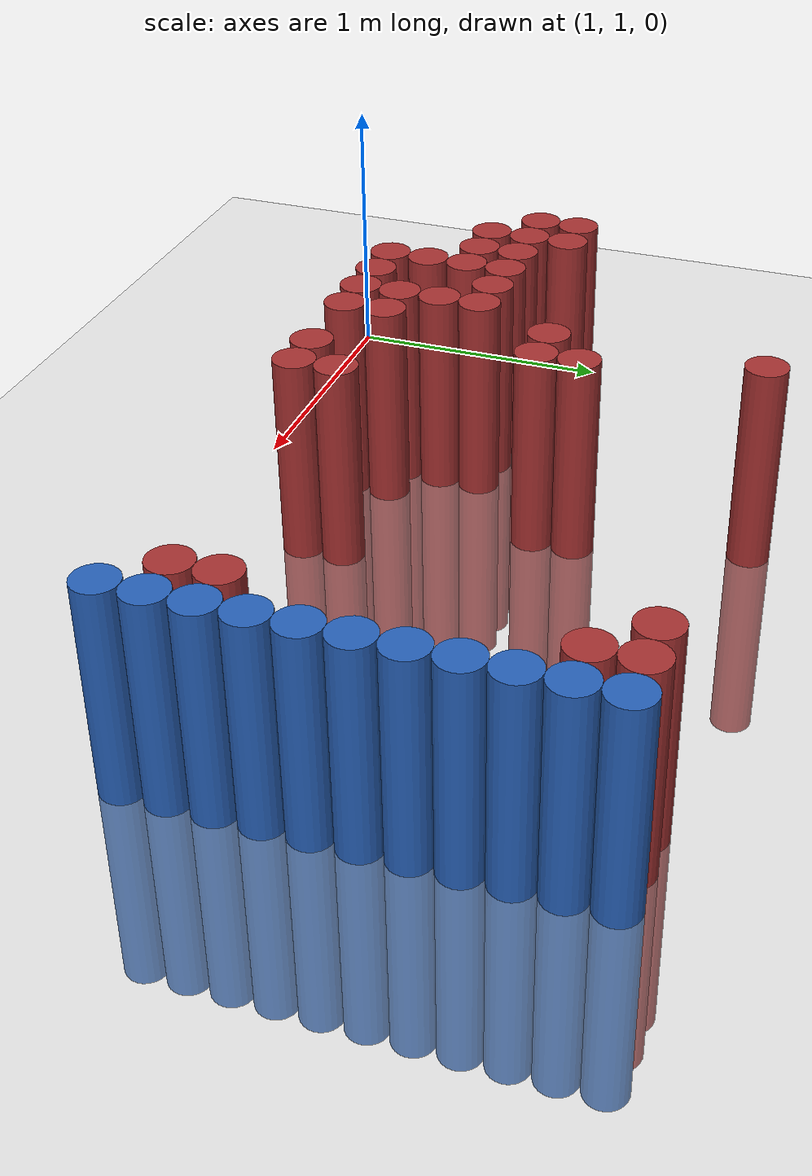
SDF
<sdf version="1.6">
 <world name="default">
  <model name="ground_plane">
   <static>1</static>
   <link name="link">
    <collision name="collision">
     <geometry><plane><normal>0 0 1</normal><size>100 100</size></plane></geometry>
     <surface><friction><ode><mu>100</mu><mu2>50</mu2></ode></friction></surface>
    </collision>
    <visual name="visual">
     <cast_shadows>0</cast_shadows>
     <geometry><plane><normal>0 0 1</normal><size>100 100</size></plane></geometry>
     <material>
      <script><uri>file://media/materials/scripts/gazebo.material</uri><name>Gazebo/Grey</name></script>
     </material>
    </visual>
   </link>
  </model>
  <model name="unit_cylinder_134">
   <static>1</static>
   <pose>3.925000 1.525000 0.000000 0.000000 0.000000 0.000000</pose>
   <link name="link">
    <inertial>
     <mass>1</mass>
     <inertia><ixx>0.145833</ixx><ixy>0</ixy><ixz>0</ixz><iyy>0.145833</iyy><iyz>0</iyz><izz>0.125</izz></inertia>
    </inertial>
    <collision name="collision">
     <geometry><cylinder><radius>0.075000</radius><length>1.5</length></cylinder></geometry>
    </collision>
    <visual name="visual">
     <geometry><cylinder><radius>0.075000</radius><length>1.5</length></cylinder></geometry>
     <material>
      <ambient>0.152000 0.379000 0.720000 1</ambient>
      <diffuse>0.152000 0.379000 0.720000 1</diffuse>
     </material>
     <material>
      <script><name>Gazebo/Grey</name><uri>file://media/materials/scripts/gazebo.material</uri></script>
     </material>
    </visual>
   </link>
  </model>
  <model name="unit_cylinder_136">
   <static>1</static>
   <pose>3.925000 1.675000 0.000000 0.000000 0.000000 0.000000</pose>
   <link name="link">
    <inertial>
     <mass>1</mass>
     <inertia><ixx>0.145833</ixx><ixy>0</ixy><ixz>0</ixz><iyy>0.145833</iyy><iyz>0</iyz><izz>0.125</izz></inertia>
    </inertial>
    <collision name="collision">
     <geometry><cylinder><radius>0.075000</radius><length>1.5</length></cylinder></geometry>
    </collision>
    <visual name="visual">
     <geometry><cylinder><radius>0.075000</radius><length>1.5</length></cylinder></geometry>
     <material>
      <ambient>0.152000 0.379000 0.720000 1</ambient>
      <diffuse>0.152000 0.379000 0.720000 1</diffuse>
     </material>
     <material>
      <script><name>Gazebo/Grey</name><uri>file://media/materials/scripts/gazebo.material</uri></script>
     </material>
    </visual>
   </link>
  </model>
  <model name="unit_cylinder_138">
   <static>1</static>
   <pose>3.925000 1.825000 0.000000 0.000000 0.000000 0.000000</pose>
   <link name="link">
    <inertial>
     <mass>1</mass>
     <inertia><ixx>0.145833</ixx><ixy>0</ixy><ixz>0</ixz><iyy>0.145833</iyy><iyz>0</iyz><izz>0.125</izz></inertia>
    </inertial>
    <collision name="collision">
     <geometry><cylinder><radius>0.075000</radius><length>1.5</length></cylinder></geometry>
    </collision>
    <visual name="visual">
     <geometry><cylinder><radius>0.075000</radius><length>1.5</length></cylinder></geometry>
     <material>
      <ambient>0.152000 0.379000 0.720000 1</ambient>
      <diffuse>0.152000 0.379000 0.720000 1</diffuse>
     </material>
     <material>
      <script><name>Gazebo/Grey</name><uri>file://media/materials/scripts/gazebo.material</uri></script>
     </material>
    </visual>
   </link>
  </model>
  <model name="unit_cylinder_140">
   <static>1</static>
   <pose>3.925000 1.975000 0.000000 0.000000 0.000000 0.000000</pose>
   <link name="link">
    <inertial>
     <mass>1</mass>
     <inertia><ixx>0.145833</ixx><ixy>0</ixy><ixz>0</ixz><iyy>0.145833</iyy><iyz>0</iyz><izz>0.125</izz></inertia>
    </inertial>
    <collision name="collision">
     <geometry><cylinder><radius>0.075000</radius><length>1.5</length></cylinder></geometry>
    </collision>
    <visual name="visual">
     <geometry><cylinder><radius>0.075000</radius><length>1.5</length></cylinder></geometry>
     <material>
      <ambient>0.152000 0.379000 0.720000 1</ambient>
      <diffuse>0.152000 0.379000 0.720000 1</diffuse>
     </material>
     <material>
      <script><name>Gazebo/Grey</name><uri>file://media/materials/scripts/gazebo.material</uri></script>
     </material>
    </visual>
   </link>
  </model>
  <model name="unit_cylinder_142">
   <static>1</static>
   <pose>3.925000 2.125000 0.000000 0.000000 0.000000 0.000000</pose>
   <link name="link">
    <inertial>
     <mass>1</mass>
     <inertia><ixx>0.145833</ixx><ixy>0</ixy><ixz>0</ixz><iyy>0.145833</iyy><iyz>0</iyz><izz>0.125</izz></inertia>
    </inertial>
    <collision name="collision">
     <geometry><cylinder><radius>0.075000</radius><length>1.5</length></cylinder></geometry>
    </collision>
    <visual name="visual">
     <geometry><cylinder><radius>0.075000</radius><length>1.5</length></cylinder></geometry>
     <material>
      <ambient>0.152000 0.379000 0.720000 1</ambient>
      <diffuse>0.152000 0.379000 0.720000 1</diffuse>
     </material>
     <material>
      <script><name>Gazebo/Grey</name><uri>file://media/materials/scripts/gazebo.material</uri></script>
     </material>
    </visual>
   </link>
  </model>
  <model name="unit_cylinder_144">
   <static>1</static>
   <pose>3.925000 2.275000 0.000000 0.000000 0.000000 0.000000</pose>
   <link name="link">
    <inertial>
     <mass>1</mass>
     <inertia><ixx>0.145833</ixx><ixy>0</ixy><ixz>0</ixz><iyy>0.145833</iyy><iyz>0</iyz><izz>0.125</izz></inertia>
    </inertial>
    <collision name="collision">
     <geometry><cylinder><radius>0.075000</radius><length>1.5</length></cylinder></geometry>
    </collision>
    <visual name="visual">
     <geometry><cylinder><radius>0.075000</radius><length>1.5</length></cylinder></geometry>
     <material>
      <ambient>0.152000 0.379000 0.720000 1</ambient>
      <diffuse>0.152000 0.379000 0.720000 1</diffuse>
     </material>
     <material>
      <script><name>Gazebo/Grey</name><uri>file://media/materials/scripts/gazebo.material</uri></script>
     </material>
    </visual>
   </link>
  </model>
  <model name="unit_cylinder_146">
   <static>1</static>
   <pose>3.925000 2.425000 0.000000 0.000000 0.000000 0.000000</pose>
   <link name="link">
    <inertial>
     <mass>1</mass>
     <inertia><ixx>0.145833</ixx><ixy>0</ixy><ixz>0</ixz><iyy>0.145833</iyy><iyz>0</iyz><izz>0.125</izz></inertia>
    </inertial>
    <collision name="collision">
     <geometry><cylinder><radius>0.075000</radius><length>1.5</length></cylinder></geometry>
    </collision>
    <visual name="visual">
     <geometry><cylinder><radius>0.075000</radius><length>1.5</length></cylinder></geometry>
     <material>
      <ambient>0.152000 0.379000 0.720000 1</ambient>
      <diffuse>0.152000 0.379000 0.720000 1</diffuse>
     </material>
     <material>
      <script><name>Gazebo/Grey</name><uri>file://media/materials/scripts/gazebo.material</uri></script>
     </material>
    </visual>
   </link>
  </model>
  <model name="unit_cylinder_148">
   <static>1</static>
   <pose>3.925000 2.575000 0.000000 0.000000 0.000000 0.000000</pose>
   <link name="link">
    <inertial>
     <mass>1</mass>
     <inertia><ixx>0.145833</ixx><ixy>0</ixy><ixz>0</ixz><iyy>0.145833</iyy><iyz>0</iyz><izz>0.125</izz></inertia>
    </inertial>
    <collision name="collision">
     <geometry><cylinder><radius>0.075000</radius><length>1.5</length></cylinder></geometry>
    </collision>
    <visual name="visual">
     <geometry><cylinder><radius>0.075000</radius><length>1.5</length></cylinder></geometry>
     <material>
      <ambient>0.152000 0.379000 0.720000 1</ambient>
      <diffuse>0.152000 0.379000 0.720000 1</diffuse>
     </material>
     <material>
      <script><name>Gazebo/Grey</name><uri>file://media/materials/scripts/gazebo.material</uri></script>
     </material>
    </visual>
   </link>
  </model>
  <model name="unit_cylinder_150">
   <static>1</static>
   <pose>3.925000 2.725000 0.000000 0.000000 0.000000 0.000000</pose>
   <link name="link">
    <inertial>
     <mass>1</mass>
     <inertia><ixx>0.145833</ixx><ixy>0</ixy><ixz>0</ixz><iyy>0.145833</iyy><iyz>0</iyz><izz>0.125</izz></inertia>
    </inertial>
    <collision name="collision">
     <geometry><cylinder><radius>0.075000</radius><length>1.5</length></cylinder></geometry>
    </collision>
    <visual name="visual">
     <geometry><cylinder><radius>0.075000</radius><length>1.5</length></cylinder></geometry>
     <material>
      <ambient>0.152000 0.379000 0.720000 1</ambient>
      <diffuse>0.152000 0.379000 0.720000 1</diffuse>
     </material>
     <material>
      <script><name>Gazebo/Grey</name><uri>file://media/materials/scripts/gazebo.material</uri></script>
     </material>
    </visual>
   </link>
  </model>
  <model name="unit_cylinder_152">
   <static>1</static>
   <pose>3.925000 2.875000 0.000000 0.000000 0.000000 0.000000</pose>
   <link name="link">
    <inertial>
     <mass>1</mass>
     <inertia><ixx>0.145833</ixx><ixy>0</ixy><ixz>0</ixz><iyy>0.145833</iyy><iyz>0</iyz><izz>0.125</izz></inertia>
    </inertial>
    <collision name="collision">
     <geometry><cylinder><radius>0.075000</radius><length>1.5</length></cylinder></geometry>
    </collision>
    <visual name="visual">
     <geometry><cylinder><radius>0.075000</radius><length>1.5</length></cylinder></geometry>
     <material>
      <ambient>0.152000 0.379000 0.720000 1</ambient>
      <diffuse>0.152000 0.379000 0.720000 1</diffuse>
     </material>
     <material>
      <script><name>Gazebo/Grey</name><uri>file://media/materials/scripts/gazebo.material</uri></script>
     </material>
    </visual>
   </link>
  </model>
  <model name="unit_cylinder_357">
   <static>1</static>
   <pose>1.225000 1.825000 0.000000 0.000000 0.000000 0.000000</pose>
   <link name="link">
    <inertial>
     <mass>1</mass>
     <inertia><ixx>0.145833</ixx><ixy>0</ixy><ixz>0</ixz><iyy>0.145833</iyy><iyz>0</iyz><izz>0.125</izz></inertia>
    </inertial>
    <collision name="collision">
     <geometry><cylinder><radius>0.075000</radius><length>1.5</length></cylinder></geometry>
    </collision>
    <visual name="visual">
     <geometry><cylinder><radius>0.075000</radius><length>1.5</length></cylinder></geometry>
     <material>
      <ambient>0.648000 0.192000 0.192000 1</ambient>
      <diffuse>0.648000 0.192000 0.192000 1</diffuse>
     </material>
     <material>
      <script><name>Gazebo/Grey</name><uri>file://media/materials/scripts/gazebo.material</uri></script>
     </material>
    </visual>
   </link>
  </model>
  <model name="unit_cylinder_358">
   <static>1</static>
   <pose>1.225000 1.975000 0.000000 0.000000 0.000000 0.000000</pose>
   <link name="link">
    <inertial>
     <mass>1</mass>
     <inertia><ixx>0.145833</ixx><ixy>0</ixy><ixz>0</ixz><iyy>0.145833</iyy><iyz>0</iyz><izz>0.125</izz></inertia>
    </inertial>
    <collision name="collision">
     <geometry><cylinder><radius>0.075000</radius><length>1.5</length></cylinder></geometry>
    </collision>
    <visual name="visual">
     <geometry><cylinder><radius>0.075000</radius><length>1.5</length></cylinder></geometry>
     <material>
      <ambient>0.648000 0.192000 0.192000 1</ambient>
      <diffuse>0.648000 0.192000 0.192000 1</diffuse>
     </material>
     <material>
      <script><name>Gazebo/Grey</name><uri>file://media/materials/scripts/gazebo.material</uri></script>
     </material>
    </visual>
   </link>
  </model>
  <model name="unit_cylinder_361">
   <static>1</static>
   <pose>1.375000 1.675000 0.000000 0.000000 0.000000 0.000000</pose>
   <link name="link">
    <inertial>
     <mass>1</mass>
     <inertia><ixx>0.145833</ixx><ixy>0</ixy><ixz>0</ixz><iyy>0.145833</iyy><iyz>0</iyz><izz>0.125</izz></inertia>
    </inertial>
    <collision name="collision">
     <geometry><cylinder><radius>0.075000</radius><length>1.5</length></cylinder></geometry>
    </collision>
    <visual name="visual">
     <geometry><cylinder><radius>0.075000</radius><length>1.5</length></cylinder></geometry>
     <material>
      <ambient>0.648000 0.192000 0.192000 1</ambient>
      <diffuse>0.648000 0.192000 0.192000 1</diffuse>
     </material>
     <material>
      <script><name>Gazebo/Grey</name><uri>file://media/materials/scripts/gazebo.material</uri></script>
     </material>
    </visual>
   </link>
  </model>
  <model name="unit_cylinder_362">
   <static>1</static>
   <pose>1.375000 1.825000 0.000000 0.000000 0.000000 0.000000</pose>
   <link name="link">
    <inertial>
     <mass>1</mass>
     <inertia><ixx>0.145833</ixx><ixy>0</ixy><ixz>0</ixz><iyy>0.145833</iyy><iyz>0</iyz><izz>0.125</izz></inertia>
    </inertial>
    <collision name="collision">
     <geometry><cylinder><radius>0.075000</radius><length>1.5</length></cylinder></geometry>
    </collision>
    <visual name="visual">
     <geometry><cylinder><radius>0.075000</radius><length>1.5</length></cylinder></geometry>
     <material>
      <ambient>0.648000 0.192000 0.192000 1</ambient>
      <diffuse>0.648000 0.192000 0.192000 1</diffuse>
     </material>
     <material>
      <script><name>Gazebo/Grey</name><uri>file://media/materials/scripts/gazebo.material</uri></script>
     </material>
    </visual>
   </link>
  </model>
  <model name="unit_cylinder_363">
   <static>1</static>
   <pose>1.375000 1.975000 0.000000 0.000000 0.000000 0.000000</pose>
   <link name="link">
    <inertial>
     <mass>1</mass>
     <inertia><ixx>0.145833</ixx><ixy>0</ixy><ixz>0</ixz><iyy>0.145833</iyy><iyz>0</iyz><izz>0.125</izz></inertia>
    </inertial>
    <collision name="collision">
     <geometry><cylinder><radius>0.075000</radius><length>1.5</length></cylinder></geometry>
    </collision>
    <visual name="visual">
     <geometry><cylinder><radius>0.075000</radius><length>1.5</length></cylinder></geometry>
     <material>
      <ambient>0.648000 0.192000 0.192000 1</ambient>
      <diffuse>0.648000 0.192000 0.192000 1</diffuse>
     </material>
     <material>
      <script><name>Gazebo/Grey</name><uri>file://media/materials/scripts/gazebo.material</uri></script>
     </material>
    </visual>
   </link>
  </model>
  <model name="unit_cylinder_366">
   <static>1</static>
   <pose>1.525000 1.675000 0.000000 0.000000 0.000000 0.000000</pose>
   <link name="link">
    <inertial>
     <mass>1</mass>
     <inertia><ixx>0.145833</ixx><ixy>0</ixy><ixz>0</ixz><iyy>0.145833</iyy><iyz>0</iyz><izz>0.125</izz></inertia>
    </inertial>
    <collision name="collision">
     <geometry><cylinder><radius>0.075000</radius><length>1.5</length></cylinder></geometry>
    </collision>
    <visual name="visual">
     <geometry><cylinder><radius>0.075000</radius><length>1.5</length></cylinder></geometry>
     <material>
      <ambient>0.648000 0.192000 0.192000 1</ambient>
      <diffuse>0.648000 0.192000 0.192000 1</diffuse>
     </material>
     <material>
      <script><name>Gazebo/Grey</name><uri>file://media/materials/scripts/gazebo.material</uri></script>
     </material>
    </visual>
   </link>
  </model>
  <model name="unit_cylinder_367">
   <static>1</static>
   <pose>1.525000 1.825000 0.000000 0.000000 0.000000 0.000000</pose>
   <link name="link">
    <inertial>
     <mass>1</mass>
     <inertia><ixx>0.145833</ixx><ixy>0</ixy><ixz>0</ixz><iyy>0.145833</iyy><iyz>0</iyz><izz>0.125</izz></inertia>
    </inertial>
    <collision name="collision">
     <geometry><cylinder><radius>0.075000</radius><length>1.5</length></cylinder></geometry>
    </collision>
    <visual name="visual">
     <geometry><cylinder><radius>0.075000</radius><length>1.5</length></cylinder></geometry>
     <material>
      <ambient>0.648000 0.192000 0.192000 1</ambient>
      <diffuse>0.648000 0.192000 0.192000 1</diffuse>
     </material>
     <material>
      <script><name>Gazebo/Grey</name><uri>file://media/materials/scripts/gazebo.material</uri></script>
     </material>
    </visual>
   </link>
  </model>
  <model name="unit_cylinder_373">
   <static>1</static>
   <pose>1.675000 1.375000 0.000000 0.000000 0.000000 0.000000</pose>
   <link name="link">
    <inertial>
     <mass>1</mass>
     <inertia><ixx>0.145833</ixx><ixy>0</ixy><ixz>0</ixz><iyy>0.145833</iyy><iyz>0</iyz><izz>0.125</izz></inertia>
    </inertial>
    <collision name="collision">
     <geometry><cylinder><radius>0.075000</radius><length>1.5</length></cylinder></geometry>
    </collision>
    <visual name="visual">
     <geometry><cylinder><radius>0.075000</radius><length>1.5</length></cylinder></geometry>
     <material>
      <ambient>0.648000 0.192000 0.192000 1</ambient>
      <diffuse>0.648000 0.192000 0.192000 1</diffuse>
     </material>
     <material>
      <script><name>Gazebo/Grey</name><uri>file://media/materials/scripts/gazebo.material</uri></script>
     </material>
    </visual>
   </link>
  </model>
  <model name="unit_cylinder_374">
   <static>1</static>
   <pose>1.675000 1.525000 0.000000 0.000000 0.000000 0.000000</pose>
   <link name="link">
    <inertial>
     <mass>1</mass>
     <inertia><ixx>0.145833</ixx><ixy>0</ixy><ixz>0</ixz><iyy>0.145833</iyy><iyz>0</iyz><izz>0.125</izz></inertia>
    </inertial>
    <collision name="collision">
     <geometry><cylinder><radius>0.075000</radius><length>1.5</length></cylinder></geometry>
    </collision>
    <visual name="visual">
     <geometry><cylinder><radius>0.075000</radius><length>1.5</length></cylinder></geometry>
     <material>
      <ambient>0.648000 0.192000 0.192000 1</ambient>
      <diffuse>0.648000 0.192000 0.192000 1</diffuse>
     </material>
     <material>
      <script><name>Gazebo/Grey</name><uri>file://media/materials/scripts/gazebo.material</uri></script>
     </material>
    </visual>
   </link>
  </model>
  <model name="unit_cylinder_375">
   <static>1</static>
   <pose>1.675000 1.675000 0.000000 0.000000 0.000000 0.000000</pose>
   <link name="link">
    <inertial>
     <mass>1</mass>
     <inertia><ixx>0.145833</ixx><ixy>0</ixy><ixz>0</ixz><iyy>0.145833</iyy><iyz>0</iyz><izz>0.125</izz></inertia>
    </inertial>
    <collision name="collision">
     <geometry><cylinder><radius>0.075000</radius><length>1.5</length></cylinder></geometry>
    </collision>
    <visual name="visual">
     <geometry><cylinder><radius>0.075000</radius><length>1.5</length></cylinder></geometry>
     <material>
      <ambient>0.648000 0.192000 0.192000 1</ambient>
      <diffuse>0.648000 0.192000 0.192000 1</diffuse>
     </material>
     <material>
      <script><name>Gazebo/Grey</name><uri>file://media/materials/scripts/gazebo.material</uri></script>
     </material>
    </visual>
   </link>
  </model>
  <model name="unit_cylinder_376">
   <static>1</static>
   <pose>1.675000 1.825000 0.000000 0.000000 0.000000 0.000000</pose>
   <link name="link">
    <inertial>
     <mass>1</mass>
     <inertia><ixx>0.145833</ixx><ixy>0</ixy><ixz>0</ixz><iyy>0.145833</iyy><iyz>0</iyz><izz>0.125</izz></inertia>
    </inertial>
    <collision name="collision">
     <geometry><cylinder><radius>0.075000</radius><length>1.5</length></cylinder></geometry>
    </collision>
    <visual name="visual">
     <geometry><cylinder><radius>0.075000</radius><length>1.5</length></cylinder></geometry>
     <material>
      <ambient>0.648000 0.192000 0.192000 1</ambient>
      <diffuse>0.648000 0.192000 0.192000 1</diffuse>
     </material>
     <material>
      <script><name>Gazebo/Grey</name><uri>file://media/materials/scripts/gazebo.material</uri></script>
     </material>
    </visual>
   </link>
  </model>
  <model name="unit_cylinder_384">
   <static>1</static>
   <pose>1.825000 1.375000 0.000000 0.000000 0.000000 0.000000</pose>
   <link name="link">
    <inertial>
     <mass>1</mass>
     <inertia><ixx>0.145833</ixx><ixy>0</ixy><ixz>0</ixz><iyy>0.145833</iyy><iyz>0</iyz><izz>0.125</izz></inertia>
    </inertial>
    <collision name="collision">
     <geometry><cylinder><radius>0.075000</radius><length>1.5</length></cylinder></geometry>
    </collision>
    <visual name="visual">
     <geometry><cylinder><radius>0.075000</radius><length>1.5</length></cylinder></geometry>
     <material>
      <ambient>0.648000 0.192000 0.192000 1</ambient>
      <diffuse>0.648000 0.192000 0.192000 1</diffuse>
     </material>
     <material>
      <script><name>Gazebo/Grey</name><uri>file://media/materials/scripts/gazebo.material</uri></script>
     </material>
    </visual>
   </link>
  </model>
  <model name="unit_cylinder_385">
   <static>1</static>
   <pose>1.825000 1.825000 0.000000 0.000000 0.000000 0.000000</pose>
   <link name="link">
    <inertial>
     <mass>1</mass>
     <inertia><ixx>0.145833</ixx><ixy>0</ixy><ixz>0</ixz><iyy>0.145833</iyy><iyz>0</iyz><izz>0.125</izz></inertia>
    </inertial>
    <collision name="collision">
     <geometry><cylinder><radius>0.075000</radius><length>1.5</length></cylinder></geometry>
    </collision>
    <visual name="visual">
     <geometry><cylinder><radius>0.075000</radius><length>1.5</length></cylinder></geometry>
     <material>
      <ambient>0.648000 0.192000 0.192000 1</ambient>
      <diffuse>0.648000 0.192000 0.192000 1</diffuse>
     </material>
     <material>
      <script><name>Gazebo/Grey</name><uri>file://media/materials/scripts/gazebo.material</uri></script>
     </material>
    </visual>
   </link>
  </model>
  <model name="unit_cylinder_395">
   <static>1</static>
   <pose>1.975000 1.375000 0.000000 0.000000 0.000000 0.000000</pose>
   <link name="link">
    <inertial>
     <mass>1</mass>
     <inertia><ixx>0.145833</ixx><ixy>0</ixy><ixz>0</ixz><iyy>0.145833</iyy><iyz>0</iyz><izz>0.125</izz></inertia>
    </inertial>
    <collision name="collision">
     <geometry><cylinder><radius>0.075000</radius><length>1.5</length></cylinder></geometry>
    </collision>
    <visual name="visual">
     <geometry><cylinder><radius>0.075000</radius><length>1.5</length></cylinder></geometry>
     <material>
      <ambient>0.648000 0.192000 0.192000 1</ambient>
      <diffuse>0.648000 0.192000 0.192000 1</diffuse>
     </material>
     <material>
      <script><name>Gazebo/Grey</name><uri>file://media/materials/scripts/gazebo.material</uri></script>
     </material>
    </visual>
   </link>
  </model>
  <model name="unit_cylinder_396">
   <static>1</static>
   <pose>1.975000 1.525000 0.000000 0.000000 0.000000 0.000000</pose>
   <link name="link">
    <inertial>
     <mass>1</mass>
     <inertia><ixx>0.145833</ixx><ixy>0</ixy><ixz>0</ixz><iyy>0.145833</iyy><iyz>0</iyz><izz>0.125</izz></inertia>
    </inertial>
    <collision name="collision">
     <geometry><cylinder><radius>0.075000</radius><length>1.5</length></cylinder></geometry>
    </collision>
    <visual name="visual">
     <geometry><cylinder><radius>0.075000</radius><length>1.5</length></cylinder></geometry>
     <material>
      <ambient>0.648000 0.192000 0.192000 1</ambient>
      <diffuse>0.648000 0.192000 0.192000 1</diffuse>
     </material>
     <material>
      <script><name>Gazebo/Grey</name><uri>file://media/materials/scripts/gazebo.material</uri></script>
     </material>
    </visual>
   </link>
  </model>
  <model name="unit_cylinder_397">
   <static>1</static>
   <pose>1.975000 1.675000 0.000000 0.000000 0.000000 0.000000</pose>
   <link name="link">
    <inertial>
     <mass>1</mass>
     <inertia><ixx>0.145833</ixx><ixy>0</ixy><ixz>0</ixz><iyy>0.145833</iyy><iyz>0</iyz><izz>0.125</izz></inertia>
    </inertial>
    <collision name="collision">
     <geometry><cylinder><radius>0.075000</radius><length>1.5</length></cylinder></geometry>
    </collision>
    <visual name="visual">
     <geometry><cylinder><radius>0.075000</radius><length>1.5</length></cylinder></geometry>
     <material>
      <ambient>0.648000 0.192000 0.192000 1</ambient>
      <diffuse>0.648000 0.192000 0.192000 1</diffuse>
     </material>
     <material>
      <script><name>Gazebo/Grey</name><uri>file://media/materials/scripts/gazebo.material</uri></script>
     </material>
    </visual>
   </link>
  </model>
  <model name="unit_cylinder_398">
   <static>1</static>
   <pose>1.975000 1.825000 0.000000 0.000000 0.000000 0.000000</pose>
   <link name="link">
    <inertial>
     <mass>1</mass>
     <inertia><ixx>0.145833</ixx><ixy>0</ixy><ixz>0</ixz><iyy>0.145833</iyy><iyz>0</iyz><izz>0.125</izz></inertia>
    </inertial>
    <collision name="collision">
     <geometry><cylinder><radius>0.075000</radius><length>1.5</length></cylinder></geometry>
    </collision>
    <visual name="visual">
     <geometry><cylinder><radius>0.075000</radius><length>1.5</length></cylinder></geometry>
     <material>
      <ambient>0.648000 0.192000 0.192000 1</ambient>
      <diffuse>0.648000 0.192000 0.192000 1</diffuse>
     </material>
     <material>
      <script><name>Gazebo/Grey</name><uri>file://media/materials/scripts/gazebo.material</uri></script>
     </material>
    </visual>
   </link>
  </model>
  <model name="unit_cylinder_406">
   <static>1</static>
   <pose>2.125000 1.375000 0.000000 0.000000 0.000000 0.000000</pose>
   <link name="link">
    <inertial>
     <mass>1</mass>
     <inertia><ixx>0.145833</ixx><ixy>0</ixy><ixz>0</ixz><iyy>0.145833</iyy><iyz>0</iyz><izz>0.125</izz></inertia>
    </inertial>
    <collision name="collision">
     <geometry><cylinder><radius>0.075000</radius><length>1.5</length></cylinder></geometry>
    </collision>
    <visual name="visual">
     <geometry><cylinder><radius>0.075000</radius><length>1.5</length></cylinder></geometry>
     <material>
      <ambient>0.648000 0.192000 0.192000 1</ambient>
      <diffuse>0.648000 0.192000 0.192000 1</diffuse>
     </material>
     <material>
      <script><name>Gazebo/Grey</name><uri>file://media/materials/scripts/gazebo.material</uri></script>
     </material>
    </visual>
   </link>
  </model>
  <model name="unit_cylinder_407">
   <static>1</static>
   <pose>2.125000 1.525000 0.000000 0.000000 0.000000 0.000000</pose>
   <link name="link">
    <inertial>
     <mass>1</mass>
     <inertia><ixx>0.145833</ixx><ixy>0</ixy><ixz>0</ixz><iyy>0.145833</iyy><iyz>0</iyz><izz>0.125</izz></inertia>
    </inertial>
    <collision name="collision">
     <geometry><cylinder><radius>0.075000</radius><length>1.5</length></cylinder></geometry>
    </collision>
    <visual name="visual">
     <geometry><cylinder><radius>0.075000</radius><length>1.5</length></cylinder></geometry>
     <material>
      <ambient>0.648000 0.192000 0.192000 1</ambient>
      <diffuse>0.648000 0.192000 0.192000 1</diffuse>
     </material>
     <material>
      <script><name>Gazebo/Grey</name><uri>file://media/materials/scripts/gazebo.material</uri></script>
     </material>
    </visual>
   </link>
  </model>
  <model name="unit_cylinder_408">
   <static>1</static>
   <pose>2.125000 2.125000 0.000000 0.000000 0.000000 0.000000</pose>
   <link name="link">
    <inertial>
     <mass>1</mass>
     <inertia><ixx>0.145833</ixx><ixy>0</ixy><ixz>0</ixz><iyy>0.145833</iyy><iyz>0</iyz><izz>0.125</izz></inertia>
    </inertial>
    <collision name="collision">
     <geometry><cylinder><radius>0.075000</radius><length>1.5</length></cylinder></geometry>
    </collision>
    <visual name="visual">
     <geometry><cylinder><radius>0.075000</radius><length>1.5</length></cylinder></geometry>
     <material>
      <ambient>0.648000 0.192000 0.192000 1</ambient>
      <diffuse>0.648000 0.192000 0.192000 1</diffuse>
     </material>
     <material>
      <script><name>Gazebo/Grey</name><uri>file://media/materials/scripts/gazebo.material</uri></script>
     </material>
    </visual>
   </link>
  </model>
  <model name="unit_cylinder_409">
   <static>1</static>
   <pose>2.125000 2.875000 0.000000 0.000000 0.000000 0.000000</pose>
   <link name="link">
    <inertial>
     <mass>1</mass>
     <inertia><ixx>0.145833</ixx><ixy>0</ixy><ixz>0</ixz><iyy>0.145833</iyy><iyz>0</iyz><izz>0.125</izz></inertia>
    </inertial>
    <collision name="collision">
     <geometry><cylinder><radius>0.075000</radius><length>1.5</length></cylinder></geometry>
    </collision>
    <visual name="visual">
     <geometry><cylinder><radius>0.075000</radius><length>1.5</length></cylinder></geometry>
     <material>
      <ambient>0.648000 0.192000 0.192000 1</ambient>
      <diffuse>0.648000 0.192000 0.192000 1</diffuse>
     </material>
     <material>
      <script><name>Gazebo/Grey</name><uri>file://media/materials/scripts/gazebo.material</uri></script>
     </material>
    </visual>
   </link>
  </model>
  <model name="unit_cylinder_416">
   <static>1</static>
   <pose>2.275000 2.125000 0.000000 0.000000 0.000000 0.000000</pose>
   <link name="link">
    <inertial>
     <mass>1</mass>
     <inertia><ixx>0.145833</ixx><ixy>0</ixy><ixz>0</ixz><iyy>0.145833</iyy><iyz>0</iyz><izz>0.125</izz></inertia>
    </inertial>
    <collision name="collision">
     <geometry><cylinder><radius>0.075000</radius><length>1.5</length></cylinder></geometry>
    </collision>
    <visual name="visual">
     <geometry><cylinder><radius>0.075000</radius><length>1.5</length></cylinder></geometry>
     <material>
      <ambient>0.648000 0.192000 0.192000 1</ambient>
      <diffuse>0.648000 0.192000 0.192000 1</diffuse>
     </material>
     <material>
      <script><name>Gazebo/Grey</name><uri>file://media/materials/scripts/gazebo.material</uri></script>
     </material>
    </visual>
   </link>
  </model>
  <model name="unit_cylinder_417">
   <static>1</static>
   <pose>2.275000 2.275000 0.000000 0.000000 0.000000 0.000000</pose>
   <link name="link">
    <inertial>
     <mass>1</mass>
     <inertia><ixx>0.145833</ixx><ixy>0</ixy><ixz>0</ixz><iyy>0.145833</iyy><iyz>0</iyz><izz>0.125</izz></inertia>
    </inertial>
    <collision name="collision">
     <geometry><cylinder><radius>0.075000</radius><length>1.5</length></cylinder></geometry>
    </collision>
    <visual name="visual">
     <geometry><cylinder><radius>0.075000</radius><length>1.5</length></cylinder></geometry>
     <material>
      <ambient>0.648000 0.192000 0.192000 1</ambient>
      <diffuse>0.648000 0.192000 0.192000 1</diffuse>
     </material>
     <material>
      <script><name>Gazebo/Grey</name><uri>file://media/materials/scripts/gazebo.material</uri></script>
     </material>
    </visual>
   </link>
  </model>
  <model name="unit_cylinder_421">
   <static>1</static>
   <pose>2.425000 1.375000 0.000000 0.000000 0.000000 0.000000</pose>
   <link name="link">
    <inertial>
     <mass>1</mass>
     <inertia><ixx>0.145833</ixx><ixy>0</ixy><ixz>0</ixz><iyy>0.145833</iyy><iyz>0</iyz><izz>0.125</izz></inertia>
    </inertial>
    <collision name="collision">
     <geometry><cylinder><radius>0.075000</radius><length>1.5</length></cylinder></geometry>
    </collision>
    <visual name="visual">
     <geometry><cylinder><radius>0.075000</radius><length>1.5</length></cylinder></geometry>
     <material>
      <ambient>0.648000 0.192000 0.192000 1</ambient>
      <diffuse>0.648000 0.192000 0.192000 1</diffuse>
     </material>
     <material>
      <script><name>Gazebo/Grey</name><uri>file://media/materials/scripts/gazebo.material</uri></script>
     </material>
    </visual>
   </link>
  </model>
  <model name="unit_cylinder_423">
   <static>1</static>
   <pose>2.575000 1.375000 0.000000 0.000000 0.000000 0.000000</pose>
   <link name="link">
    <inertial>
     <mass>1</mass>
     <inertia><ixx>0.145833</ixx><ixy>0</ixy><ixz>0</ixz><iyy>0.145833</iyy><iyz>0</iyz><izz>0.125</izz></inertia>
    </inertial>
    <collision name="collision">
     <geometry><cylinder><radius>0.075000</radius><length>1.5</length></cylinder></geometry>
    </collision>
    <visual name="visual">
     <geometry><cylinder><radius>0.075000</radius><length>1.5</length></cylinder></geometry>
     <material>
      <ambient>0.648000 0.192000 0.192000 1</ambient>
      <diffuse>0.648000 0.192000 0.192000 1</diffuse>
     </material>
     <material>
      <script><name>Gazebo/Grey</name><uri>file://media/materials/scripts/gazebo.material</uri></script>
     </material>
    </visual>
   </link>
  </model>
  <model name="unit_cylinder_424">
   <static>1</static>
   <pose>2.575000 1.525000 0.000000 0.000000 0.000000 0.000000</pose>
   <link name="link">
    <inertial>
     <mass>1</mass>
     <inertia><ixx>0.145833</ixx><ixy>0</ixy><ixz>0</ixz><iyy>0.145833</iyy><iyz>0</iyz><izz>0.125</izz></inertia>
    </inertial>
    <collision name="collision">
     <geometry><cylinder><radius>0.075000</radius><length>1.5</length></cylinder></geometry>
    </collision>
    <visual name="visual">
     <geometry><cylinder><radius>0.075000</radius><length>1.5</length></cylinder></geometry>
     <material>
      <ambient>0.648000 0.192000 0.192000 1</ambient>
      <diffuse>0.648000 0.192000 0.192000 1</diffuse>
     </material>
     <material>
      <script><name>Gazebo/Grey</name><uri>file://media/materials/scripts/gazebo.material</uri></script>
     </material>
    </visual>
   </link>
  </model>
  <model name="unit_cylinder_454">
   <static>1</static>
   <pose>3.625000 2.875000 0.000000 0.000000 0.000000 0.000000</pose>
   <link name="link">
    <inertial>
     <mass>1</mass>
     <inertia><ixx>0.145833</ixx><ixy>0</ixy><ixz>0</ixz><iyy>0.145833</iyy><iyz>0</iyz><izz>0.125</izz></inertia>
    </inertial>
    <collision name="collision">
     <geometry><cylinder><radius>0.075000</radius><length>1.5</length></cylinder></geometry>
    </collision>
    <visual name="visual">
     <geometry><cylinder><radius>0.075000</radius><length>1.5</length></cylinder></geometry>
     <material>
      <ambient>0.648000 0.192000 0.192000 1</ambient>
      <diffuse>0.648000 0.192000 0.192000 1</diffuse>
     </material>
     <material>
      <script><name>Gazebo/Grey</name><uri>file://media/materials/scripts/gazebo.material</uri></script>
     </material>
    </visual>
   </link>
  </model>
  <model name="unit_cylinder_463">
   <static>1</static>
   <pose>3.775000 1.525000 0.000000 0.000000 0.000000 0.000000</pose>
   <link name="link">
    <inertial>
     <mass>1</mass>
     <inertia><ixx>0.145833</ixx><ixy>0</ixy><ixz>0</ixz><iyy>0.145833</iyy><iyz>0</iyz><izz>0.125</izz></inertia>
    </inertial>
    <collision name="collision">
     <geometry><cylinder><radius>0.075000</radius><length>1.5</length></cylinder></geometry>
    </collision>
    <visual name="visual">
     <geometry><cylinder><radius>0.075000</radius><length>1.5</length></cylinder></geometry>
     <material>
      <ambient>0.648000 0.192000 0.192000 1</ambient>
      <diffuse>0.648000 0.192000 0.192000 1</diffuse>
     </material>
     <material>
      <script><name>Gazebo/Grey</name><uri>file://media/materials/scripts/gazebo.material</uri></script>
     </material>
    </visual>
   </link>
  </model>
  <model name="unit_cylinder_464">
   <static>1</static>
   <pose>3.775000 1.675000 0.000000 0.000000 0.000000 0.000000</pose>
   <link name="link">
    <inertial>
     <mass>1</mass>
     <inertia><ixx>0.145833</ixx><ixy>0</ixy><ixz>0</ixz><iyy>0.145833</iyy><iyz>0</iyz><izz>0.125</izz></inertia>
    </inertial>
    <collision name="collision">
     <geometry><cylinder><radius>0.075000</radius><length>1.5</length></cylinder></geometry>
    </collision>
    <visual name="visual">
     <geometry><cylinder><radius>0.075000</radius><length>1.5</length></cylinder></geometry>
     <material>
      <ambient>0.648000 0.192000 0.192000 1</ambient>
      <diffuse>0.648000 0.192000 0.192000 1</diffuse>
     </material>
     <material>
      <script><name>Gazebo/Grey</name><uri>file://media/materials/scripts/gazebo.material</uri></script>
     </material>
    </visual>
   </link>
  </model>
  <model name="unit_cylinder_465">
   <static>1</static>
   <pose>3.775000 2.725000 0.000000 0.000000 0.000000 0.000000</pose>
   <link name="link">
    <inertial>
     <mass>1</mass>
     <inertia><ixx>0.145833</ixx><ixy>0</ixy><ixz>0</ixz><iyy>0.145833</iyy><iyz>0</iyz><izz>0.125</izz></inertia>
    </inertial>
    <collision name="collision">
     <geometry><cylinder><radius>0.075000</radius><length>1.5</length></cylinder></geometry>
    </collision>
    <visual name="visual">
     <geometry><cylinder><radius>0.075000</radius><length>1.5</length></cylinder></geometry>
     <material>
      <ambient>0.648000 0.192000 0.192000 1</ambient>
      <diffuse>0.648000 0.192000 0.192000 1</diffuse>
     </material>
     <material>
      <script><name>Gazebo/Grey</name><uri>file://media/materials/scripts/gazebo.material</uri></script>
     </material>
    </visual>
   </link>
  </model>
  <model name="unit_cylinder_466">
   <static>1</static>
   <pose>3.775000 2.875000 0.000000 0.000000 0.000000 0.000000</pose>
   <link name="link">
    <inertial>
     <mass>1</mass>
     <inertia><ixx>0.145833</ixx><ixy>0</ixy><ixz>0</ixz><iyy>0.145833</iyy><iyz>0</iyz><izz>0.125</izz></inertia>
    </inertial>
    <collision name="collision">
     <geometry><cylinder><radius>0.075000</radius><length>1.5</length></cylinder></geometry>
    </collision>
    <visual name="visual">
     <geometry><cylinder><radius>0.075000</radius><length>1.5</length></cylinder></geometry>
     <material>
      <ambient>0.648000 0.192000 0.192000 1</ambient>
      <diffuse>0.648000 0.192000 0.192000 1</diffuse>
     </material>
     <material>
      <script><name>Gazebo/Grey</name><uri>file://media/materials/scripts/gazebo.material</uri></script>
     </material>
    </visual>
   </link>
  </model>
  <model name="unit_cylinder_492">
   <static>1</static>
   <pose>3.925000 1.375000 0.000000 0.000000 0.000000 0.000000</pose>
   <link name="link">
    <inertial>
     <mass>1</mass>
     <inertia><ixx>0.145833</ixx><ixy>0</ixy><ixz>0</ixz><iyy>0.145833</iyy><iyz>0</iyz><izz>0.125</izz></inertia>
    </inertial>
    <collision name="collision">
     <geometry><cylinder><radius>0.075000</radius><length>1.5</length></cylinder></geometry>
    </collision>
    <visual name="visual">
     <geometry><cylinder><radius>0.075000</radius><length>1.5</length></cylinder></geometry>
     <material>
      <ambient>0.152000 0.379000 0.720000 1</ambient>
      <diffuse>0.152000 0.379000 0.720000 1</diffuse>
     </material>
     <material>
      <script><name>Gazebo/Grey</name><uri>file://media/materials/scripts/gazebo.material</uri></script>
     </material>
    </visual>
   </link>
  </model>
  <model name="unit_cylinder_493">
   <static>1</static>
   <pose>3.925000 1.525000 0.000000 0.000000 0.000000 0.000000</pose>
   <link name="link">
    <inertial>
     <mass>1</mass>
     <inertia><ixx>0.145833</ixx><ixy>0</ixy><ixz>0</ixz><iyy>0.145833</iyy><iyz>0</iyz><izz>0.125</izz></inertia>
    </inertial>
    <collision name="collision">
     <geometry><cylinder><radius>0.075000</radius><length>1.5</length></cylinder></geometry>
    </collision>
    <visual name="visual">
     <geometry><cylinder><radius>0.075000</radius><length>1.5</length></cylinder></geometry>
     <material>
      <ambient>0.152000 0.379000 0.720000 1</ambient>
      <diffuse>0.152000 0.379000 0.720000 1</diffuse>
     </material>
     <material>
      <script><name>Gazebo/Grey</name><uri>file://media/materials/scripts/gazebo.material</uri></script>
     </material>
    </visual>
   </link>
  </model>
  <model name="unit_cylinder_494">
   <static>1</static>
   <pose>3.925000 1.675000 0.000000 0.000000 0.000000 0.000000</pose>
   <link name="link">
    <inertial>
     <mass>1</mass>
     <inertia><ixx>0.145833</ixx><ixy>0</ixy><ixz>0</ixz><iyy>0.145833</iyy><iyz>0</iyz><izz>0.125</izz></inertia>
    </inertial>
    <collision name="collision">
     <geometry><cylinder><radius>0.075000</radius><length>1.5</length></cylinder></geometry>
    </collision>
    <visual name="visual">
     <geometry><cylinder><radius>0.075000</radius><length>1.5</length></cylinder></geometry>
     <material>
      <ambient>0.152000 0.379000 0.720000 1</ambient>
      <diffuse>0.152000 0.379000 0.720000 1</diffuse>
     </material>
     <material>
      <script><name>Gazebo/Grey</name><uri>file://media/materials/scripts/gazebo.material</uri></script>
     </material>
    </visual>
   </link>
  </model>
  <model name="unit_cylinder_495">
   <static>1</static>
   <pose>3.925000 1.825000 0.000000 0.000000 0.000000 0.000000</pose>
   <link name="link">
    <inertial>
     <mass>1</mass>
     <inertia><ixx>0.145833</ixx><ixy>0</ixy><ixz>0</ixz><iyy>0.145833</iyy><iyz>0</iyz><izz>0.125</izz></inertia>
    </inertial>
    <collision name="collision">
     <geometry><cylinder><radius>0.075000</radius><length>1.5</length></cylinder></geometry>
    </collision>
    <visual name="visual">
     <geometry><cylinder><radius>0.075000</radius><length>1.5</length></cylinder></geometry>
     <material>
      <ambient>0.152000 0.379000 0.720000 1</ambient>
      <diffuse>0.152000 0.379000 0.720000 1</diffuse>
     </material>
     <material>
      <script><name>Gazebo/Grey</name><uri>file://media/materials/scripts/gazebo.material</uri></script>
     </material>
    </visual>
   </link>
  </model>
  <model name="unit_cylinder_496">
   <static>1</static>
   <pose>3.925000 1.975000 0.000000 0.000000 0.000000 0.000000</pose>
   <link name="link">
    <inertial>
     <mass>1</mass>
     <inertia><ixx>0.145833</ixx><ixy>0</ixy><ixz>0</ixz><iyy>0.145833</iyy><iyz>0</iyz><izz>0.125</izz></inertia>
    </inertial>
    <collision name="collision">
     <geometry><cylinder><radius>0.075000</radius><length>1.5</length></cylinder></geometry>
    </collision>
    <visual name="visual">
     <geometry><cylinder><radius>0.075000</radius><length>1.5</length></cylinder></geometry>
     <material>
      <ambient>0.152000 0.379000 0.720000 1</ambient>
      <diffuse>0.152000 0.379000 0.720000 1</diffuse>
     </material>
     <material>
      <script><name>Gazebo/Grey</name><uri>file://media/materials/scripts/gazebo.material</uri></script>
     </material>
    </visual>
   </link>
  </model>
  <model name="unit_cylinder_497">
   <static>1</static>
   <pose>3.925000 2.125000 0.000000 0.000000 0.000000 0.000000</pose>
   <link name="link">
    <inertial>
     <mass>1</mass>
     <inertia><ixx>0.145833</ixx><ixy>0</ixy><ixz>0</ixz><iyy>0.145833</iyy><iyz>0</iyz><izz>0.125</izz></inertia>
    </inertial>
    <collision name="collision">
     <geometry><cylinder><radius>0.075000</radius><length>1.5</length></cylinder></geometry>
    </collision>
    <visual name="visual">
     <geometry><cylinder><radius>0.075000</radius><length>1.5</length></cylinder></geometry>
     <material>
      <ambient>0.152000 0.379000 0.720000 1</ambient>
      <diffuse>0.152000 0.379000 0.720000 1</diffuse>
     </material>
     <material>
      <script><name>Gazebo/Grey</name><uri>file://media/materials/scripts/gazebo.material</uri></script>
     </material>
    </visual>
   </link>
  </model>
  <model name="unit_cylinder_498">
   <static>1</static>
   <pose>3.925000 2.275000 0.000000 0.000000 0.000000 0.000000</pose>
   <link name="link">
    <inertial>
     <mass>1</mass>
     <inertia><ixx>0.145833</ixx><ixy>0</ixy><ixz>0</ixz><iyy>0.145833</iyy><iyz>0</iyz><izz>0.125</izz></inertia>
    </inertial>
    <collision name="collision">
     <geometry><cylinder><radius>0.075000</radius><length>1.5</length></cylinder></geometry>
    </collision>
    <visual name="visual">
     <geometry><cylinder><radius>0.075000</radius><length>1.5</length></cylinder></geometry>
     <material>
      <ambient>0.152000 0.379000 0.720000 1</ambient>
      <diffuse>0.152000 0.379000 0.720000 1</diffuse>
     </material>
     <material>
      <script><name>Gazebo/Grey</name><uri>file://media/materials/scripts/gazebo.material</uri></script>
     </material>
    </visual>
   </link>
  </model>
  <model name="unit_cylinder_499">
   <static>1</static>
   <pose>3.925000 2.425000 0.000000 0.000000 0.000000 0.000000</pose>
   <link name="link">
    <inertial>
     <mass>1</mass>
     <inertia><ixx>0.145833</ixx><ixy>0</ixy><ixz>0</ixz><iyy>0.145833</iyy><iyz>0</iyz><izz>0.125</izz></inertia>
    </inertial>
    <collision name="collision">
     <geometry><cylinder><radius>0.075000</radius><length>1.5</length></cylinder></geometry>
    </collision>
    <visual name="visual">
     <geometry><cylinder><radius>0.075000</radius><length>1.5</length></cylinder></geometry>
     <material>
      <ambient>0.152000 0.379000 0.720000 1</ambient>
      <diffuse>0.152000 0.379000 0.720000 1</diffuse>
     </material>
     <material>
      <script><name>Gazebo/Grey</name><uri>file://media/materials/scripts/gazebo.material</uri></script>
     </material>
    </visual>
   </link>
  </model>
  <model name="unit_cylinder_500">
   <static>1</static>
   <pose>3.925000 2.575000 0.000000 0.000000 0.000000 0.000000</pose>
   <link name="link">
    <inertial>
     <mass>1</mass>
     <inertia><ixx>0.145833</ixx><ixy>0</ixy><ixz>0</ixz><iyy>0.145833</iyy><iyz>0</iyz><izz>0.125</izz></inertia>
    </inertial>
    <collision name="collision">
     <geometry><cylinder><radius>0.075000</radius><length>1.5</length></cylinder></geometry>
    </collision>
    <visual name="visual">
     <geometry><cylinder><radius>0.075000</radius><length>1.5</length></cylinder></geometry>
     <material>
      <ambient>0.152000 0.379000 0.720000 1</ambient>
      <diffuse>0.152000 0.379000 0.720000 1</diffuse>
     </material>
     <material>
      <script><name>Gazebo/Grey</name><uri>file://media/materials/scripts/gazebo.material</uri></script>
     </material>
    </visual>
   </link>
  </model>
  <model name="unit_cylinder_501">
   <static>1</static>
   <pose>3.925000 2.725000 0.000000 0.000000 0.000000 0.000000</pose>
   <link name="link">
    <inertial>
     <mass>1</mass>
     <inertia><ixx>0.145833</ixx><ixy>0</ixy><ixz>0</ixz><iyy>0.145833</iyy><iyz>0</iyz><izz>0.125</izz></inertia>
    </inertial>
    <collision name="collision">
     <geometry><cylinder><radius>0.075000</radius><length>1.5</length></cylinder></geometry>
    </collision>
    <visual name="visual">
     <geometry><cylinder><radius>0.075000</radius><length>1.5</length></cylinder></geometry>
     <material>
      <ambient>0.152000 0.379000 0.720000 1</ambient>
      <diffuse>0.152000 0.379000 0.720000 1</diffuse>
     </material>
     <material>
      <script><name>Gazebo/Grey</name><uri>file://media/materials/scripts/gazebo.material</uri></script>
     </material>
    </visual>
   </link>
  </model>
  <model name="unit_cylinder_502">
   <static>1</static>
   <pose>3.925000 2.875000 0.000000 0.000000 0.000000 0.000000</pose>
   <link name="link">
    <inertial>
     <mass>1</mass>
     <inertia><ixx>0.145833</ixx><ixy>0</ixy><ixz>0</ixz><iyy>0.145833</iyy><iyz>0</iyz><izz>0.125</izz></inertia>
    </inertial>
    <collision name="collision">
     <geometry><cylinder><radius>0.075000</radius><length>1.5</length></cylinder></geometry>
    </collision>
    <visual name="visual">
     <geometry><cylinder><radius>0.075000</radius><length>1.5</length></cylinder></geometry>
     <material>
      <ambient>0.152000 0.379000 0.720000 1</ambient>
      <diffuse>0.152000 0.379000 0.720000 1</diffuse>
     </material>
     <material>
      <script><name>Gazebo/Grey</name><uri>file://media/materials/scripts/gazebo.material</uri></script>
     </material>
    </visual>
   </link>
  </model>
 </world>
</sdf>
